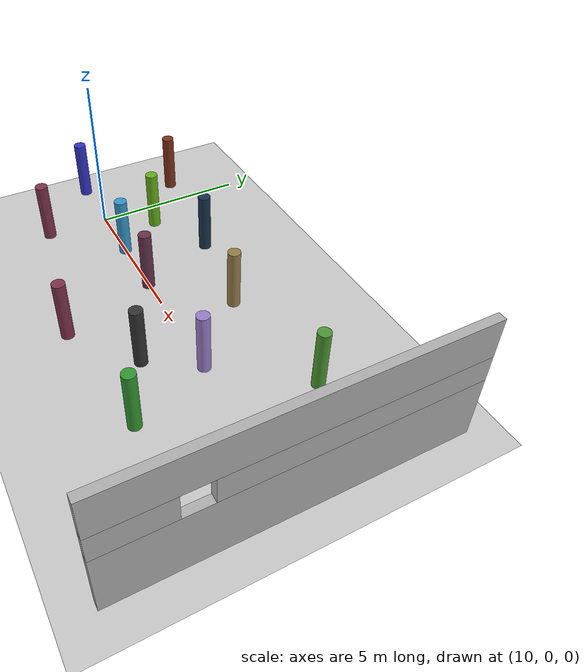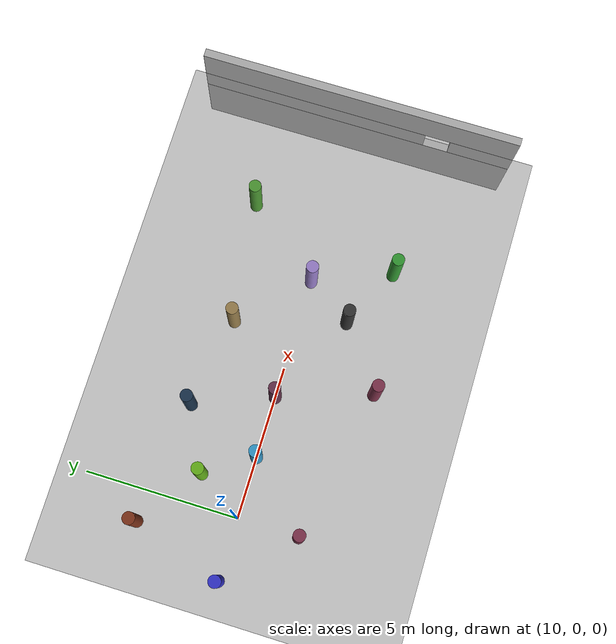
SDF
<sdf version="1.10">
 <world name="tmp">
  <physics type="ode">
   <max_step_size>0.0040000000000000001</max_step_size>
   <real_time_factor>1</real_time_factor>
   <real_time_update_rate>250</real_time_update_rate>
  </physics>
  <gravity>0 0 -9.8000000000000007</gravity>
  <magnetic_field>6.0000000000000002e-06 2.3e-05 -4.1999999999999998e-05</magnetic_field>
  <atmosphere type="adiabatic"/>
  <scene>
   <grid>false</grid>
   <ambient>0.400000006 0.400000006 0.400000006 1</ambient>
   <background>0.699999988 0.699999988 0.699999988 1</background>
   <shadows>true</shadows>
  </scene>
  <spherical_coordinates>
   <surface_model>EARTH_WGS84</surface_model>
   <world_frame_orientation>ENU</world_frame_orientation>
   <latitude_deg>37.412173071650805</latitude_deg>
   <longitude_deg>-121.998878727967</longitude_deg>
   <elevation>38</elevation>
   <heading_deg>0</heading_deg>
  </spherical_coordinates>
  <model name="ground_plane">
   <static>true</static>
   <link name="link">
    <collision name="collision">
     <geometry><plane><normal>0 0 1</normal><size>1 1</size></plane></geometry>
    </collision>
    <visual name="visual">
     <geometry><plane><normal>0 0 1</normal><size>100 100</size></plane></geometry>
     <material>
      <ambient>0.800000012 0.800000012 0.800000012 1</ambient>
      <diffuse>0.800000012 0.800000012 0.800000012 1</diffuse>
      <specular>0.800000012 0.800000012 0.800000012 1</specular>
     </material>
    </visual>
    <inertial>
     <mass>1</mass>
     <inertia><ixx>1</ixx><ixy>0</ixy><ixz>0</ixz><iyy>1</iyy><iyz>0</iyz><izz>1</izz></inertia>
    </inertial>
   </link>
  </model>
  <model name="box1">
   <pose>23 0 1 0 0 0</pose>
   <static>true</static>
   <link name="link1">
    <collision name="collision"><geometry><box><size>0.25 10 2</size></box></geometry></collision>
    <visual name="visual">
     <geometry><box><size>0.25 10 2</size></box></geometry>
     <material>
      <ambient>0.300000012 0.300000012 0.300000012 1</ambient>
      <diffuse>0.699999988 0.699999988 0.699999988 1</diffuse>
      <specular>1 1 1 1</specular>
     </material>
    </visual>
    <inertial>
     <mass>1</mass>
     <inertia><ixx>1</ixx><ixy>0</ixy><ixz>0</ixz><iyy>1</iyy><iyz>0</iyz><izz>1</izz></inertia>
    </inertial>
   </link>
  </model>
  <model name="box2">
   <pose>23 -4 2.3999999999999999 0 0 0</pose>
   <static>true</static>
   <link name="link1">
    <collision name="collision">
     <geometry><box><size>0.25 2 0.80000000000000004</size></box></geometry>
    </collision>
    <visual name="visual">
     <geometry><box><size>0.25 2 0.80000000000000004</size></box></geometry>
     <material>
      <ambient>0.300000012 0.300000012 0.300000012 1</ambient>
      <diffuse>0.699999988 0.699999988 0.699999988 1</diffuse>
      <specular>1 1 1 1</specular>
     </material>
    </visual>
    <inertial>
     <mass>1</mass>
     <inertia><ixx>1</ixx><ixy>0</ixy><ixz>0</ixz><iyy>1</iyy><iyz>0</iyz><izz>1</izz></inertia>
    </inertial>
   </link>
  </model>
  <model name="box3">
   <pose>23 1.3999999999999999 2.3999999999999999 0 0 0</pose>
   <static>true</static>
   <link name="link1">
    <collision name="collision">
     <geometry><box><size>0.25 7.2000000000000002 0.80000000000000004</size></box></geometry>
    </collision>
    <visual name="visual">
     <geometry><box><size>0.25 7.2000000000000002 0.80000000000000004</size></box></geometry>
     <material>
      <ambient>0.300000012 0.300000012 0.300000012 1</ambient>
      <diffuse>0.699999988 0.699999988 0.699999988 1</diffuse>
      <specular>1 1 1 1</specular>
     </material>
    </visual>
    <inertial>
     <mass>1</mass>
     <inertia><ixx>1</ixx><ixy>0</ixy><ixz>0</ixz><iyy>1</iyy><iyz>0</iyz><izz>1</izz></inertia>
    </inertial>
   </link>
  </model>
  <model name="box4">
   <pose>23 0 3.3999999999999999 0 0 0</pose>
   <static>true</static>
   <link name="link1">
    <collision name="collision"><geometry><box><size>0.25 10 1.2</size></box></geometry></collision>
    <visual name="visual">
     <geometry><box><size>0.25 10 1.2</size></box></geometry>
     <material>
      <ambient>0.300000012 0.300000012 0.300000012 1</ambient>
      <diffuse>0.699999988 0.699999988 0.699999988 1</diffuse>
      <specular>1 1 1 1</specular>
     </material>
    </visual>
    <inertial>
     <mass>1</mass>
     <inertia><ixx>1</ixx><ixy>0</ixy><ixz>0</ixz><iyy>1</iyy><iyz>0</iyz><izz>1</izz></inertia>
    </inertial>
   </link>
  </model>
  <model name="cylinder1">
   <pose>8 0 1 0 0 0</pose>
   <static>true</static>
   <link name="link1">
    <collision name="collision">
     <geometry><cylinder><radius>0.20000000000000001</radius><length>2</length></cylinder></geometry>
    </collision>
    <visual name="visual">
     <geometry><cylinder><radius>0.20000000000000001</radius><length>2</length></cylinder></geometry>
     <material>
      <ambient>0.200000003 0.200000003 0.800000012 1</ambient>
      <diffuse>0.200000003 0.200000003 0.800000012 1</diffuse>
      <specular>0.5 0.5 0.5 1</specular>
     </material>
    </visual>
    <inertial>
     <mass>1</mass>
     <inertia><ixx>1</ixx><ixy>0</ixy><ixz>0</ixz><iyy>1</iyy><iyz>0</iyz><izz>1</izz></inertia>
    </inertial>
   </link>
  </model>
  <model name="cylinder2">
   <pose>9 3 1 0 0 0</pose>
   <static>true</static>
   <link name="link1">
    <collision name="collision">
     <geometry><cylinder><radius>0.20000000000000001</radius><length>2</length></cylinder></geometry>
    </collision>
    <visual name="visual">
     <geometry><cylinder><radius>0.20000000000000001</radius><length>2</length></cylinder></geometry>
     <material>
      <ambient>0.5 0.200000003 0.100000001 1</ambient>
      <diffuse>0.5 0.200000003 0.100000001 1</diffuse>
      <specular>0.5 0.5 0.5 1</specular>
     </material>
    </visual>
    <inertial>
     <mass>1</mass>
     <inertia><ixx>1</ixx><ixy>0</ixy><ixz>0</ixz><iyy>1</iyy><iyz>0</iyz><izz>1</izz></inertia>
    </inertial>
   </link>
  </model>
  <model name="cylinder3">
   <pose>10 -2 1 0 0 0</pose>
   <static>true</static>
   <link name="link1">
    <collision name="collision">
     <geometry><cylinder><radius>0.20000000000000001</radius><length>2</length></cylinder></geometry>
    </collision>
    <visual name="visual">
     <geometry><cylinder><radius>0.20000000000000001</radius><length>2</length></cylinder></geometry>
     <material>
      <ambient>0.5 0.200000003 0.300000012 1</ambient>
      <diffuse>0.5 0.200000003 0.300000012 1</diffuse>
      <specular>0.5 0.5 0.5 1</specular>
     </material>
    </visual>
    <inertial>
     <mass>1</mass>
     <inertia><ixx>1</ixx><ixy>0</ixy><ixz>0</ixz><iyy>1</iyy><iyz>0</iyz><izz>1</izz></inertia>
    </inertial>
   </link>
  </model>
  <model name="cylinder4">
   <pose>11 1.5 1 0 0 0</pose>
   <static>true</static>
   <link name="link1">
    <collision name="collision">
     <geometry><cylinder><radius>0.20000000000000001</radius><length>2</length></cylinder></geometry>
    </collision>
    <visual name="visual">
     <geometry><cylinder><radius>0.20000000000000001</radius><length>2</length></cylinder></geometry>
     <material>
      <ambient>0.400000006 0.699999988 0.100000001 1</ambient>
      <diffuse>0.400000006 0.699999988 0.100000001 1</diffuse>
      <specular>0.5 0.5 0.5 1</specular>
     </material>
    </visual>
    <inertial>
     <mass>1</mass>
     <inertia><ixx>1</ixx><ixy>0</ixy><ixz>0</ixz><iyy>1</iyy><iyz>0</iyz><izz>1</izz></inertia>
    </inertial>
   </link>
  </model>
  <model name="cylinder5">
   <pose>12 0 1 0 0 0</pose>
   <static>true</static>
   <link name="link1">
    <collision name="collision">
     <geometry><cylinder><radius>0.20000000000000001</radius><length>2</length></cylinder></geometry>
    </collision>
    <visual name="visual">
     <geometry><cylinder><radius>0.20000000000000001</radius><length>2</length></cylinder></geometry>
     <material>
      <ambient>0.200000003 0.600000024 0.800000012 1</ambient>
      <diffuse>0.200000003 0.600000024 0.800000012 1</diffuse>
      <specular>0.5 0.5 0.5 1</specular>
     </material>
    </visual>
    <inertial>
     <mass>1</mass>
     <inertia><ixx>1</ixx><ixy>0</ixy><ixz>0</ixz><iyy>1</iyy><iyz>0</iyz><izz>1</izz></inertia>
    </inertial>
   </link>
  </model>
  <model name="cylinder6">
   <pose>13 2.5 1 0 0 0</pose>
   <static>true</static>
   <link name="link1">
    <collision name="collision">
     <geometry><cylinder><radius>0.20000000000000001</radius><length>2</length></cylinder></geometry>
    </collision>
    <visual name="visual">
     <geometry><cylinder><radius>0.20000000000000001</radius><length>2</length></cylinder></geometry>
     <material>
      <ambient>0.100000001 0.200000003 0.300000012 1</ambient>
      <diffuse>0.100000001 0.200000003 0.300000012 1</diffuse>
      <specular>0.5 0.5 0.5 1</specular>
     </material>
    </visual>
    <inertial>
     <mass>1</mass>
     <inertia><ixx>1</ixx><ixy>0</ixy><ixz>0</ixz><iyy>1</iyy><iyz>0</iyz><izz>1</izz></inertia>
    </inertial>
   </link>
  </model>
  <model name="cylinder7">
   <pose>13 2.5 1 0 0 0</pose>
   <static>true</static>
   <link name="link1">
    <collision name="collision">
     <geometry><cylinder><radius>0.20000000000000001</radius><length>2</length></cylinder></geometry>
    </collision>
    <visual name="visual">
     <geometry><cylinder><radius>0.20000000000000001</radius><length>2</length></cylinder></geometry>
     <material>
      <ambient>0.600000024 0.200000003 0.800000012 1</ambient>
      <diffuse>0.600000024 0.200000003 0.800000012 1</diffuse>
      <specular>0.5 0.5 0.5 1</specular>
     </material>
    </visual>
    <inertial>
     <mass>1</mass>
     <inertia><ixx>1</ixx><ixy>0</ixy><ixz>0</ixz><iyy>1</iyy><iyz>0</iyz><izz>1</izz></inertia>
    </inertial>
   </link>
  </model>
  <model name="cylinder8">
   <pose>14 0 1 0 0 0</pose>
   <static>true</static>
   <link name="link1">
    <collision name="collision">
     <geometry><cylinder><radius>0.20000000000000001</radius><length>2</length></cylinder></geometry>
    </collision>
    <visual name="visual">
     <geometry><cylinder><radius>0.20000000000000001</radius><length>2</length></cylinder></geometry>
     <material>
      <ambient>0.400000006 0.200000003 0.300000012 1</ambient>
      <diffuse>0.400000006 0.200000003 0.300000012 1</diffuse>
      <specular>0.5 0.5 0.5 1</specular>
     </material>
    </visual>
    <inertial>
     <mass>1</mass>
     <inertia><ixx>1</ixx><ixy>0</ixy><ixz>0</ixz><iyy>1</iyy><iyz>0</iyz><izz>1</izz></inertia>
    </inertial>
   </link>
  </model>
  <model name="cylinder9">
   <pose>15 -3 1 0 0 0</pose>
   <static>true</static>
   <link name="link1">
    <collision name="collision">
     <geometry><cylinder><radius>0.20000000000000001</radius><length>2</length></cylinder></geometry>
    </collision>
    <visual name="visual">
     <geometry><cylinder><radius>0.20000000000000001</radius><length>2</length></cylinder></geometry>
     <material>
      <ambient>0.5 0.200000003 0.300000012 1</ambient>
      <diffuse>0.5 0.200000003 0.300000012 1</diffuse>
      <specular>0.5 0.5 0.5 1</specular>
     </material>
    </visual>
    <inertial>
     <mass>1</mass>
     <inertia><ixx>1</ixx><ixy>0</ixy><ixz>0</ixz><iyy>1</iyy><iyz>0</iyz><izz>1</izz></inertia>
    </inertial>
   </link>
  </model>
  <model name="cylinder10">
   <pose>16 2 1 0 0 0</pose>
   <static>true</static>
   <link name="link1">
    <collision name="collision">
     <geometry><cylinder><radius>0.20000000000000001</radius><length>2</length></cylinder></geometry>
    </collision>
    <visual name="visual">
     <geometry><cylinder><radius>0.20000000000000001</radius><length>2</length></cylinder></geometry>
     <material>
      <ambient>0.600000024 0.5 0.300000012 1</ambient>
      <diffuse>0.600000024 0.5 0.300000012 1</diffuse>
      <specular>0.5 0.5 0.5 1</specular>
     </material>
    </visual>
    <inertial>
     <mass>1</mass>
     <inertia><ixx>1</ixx><ixy>0</ixy><ixz>0</ixz><iyy>1</iyy><iyz>0</iyz><izz>1</izz></inertia>
    </inertial>
   </link>
  </model>
  <model name="cylinder11">
   <pose>17 -1.5 1 0 0 0</pose>
   <static>true</static>
   <link name="link1">
    <collision name="collision">
     <geometry><cylinder><radius>0.20000000000000001</radius><length>2</length></cylinder></geometry>
    </collision>
    <visual name="visual">
     <geometry><cylinder><radius>0.20000000000000001</radius><length>2</length></cylinder></geometry>
     <material>
      <ambient>0.200000003 0.200000003 0.200000003 1</ambient>
      <diffuse>0.200000003 0.200000003 0.200000003 1</diffuse>
      <specular>0.5 0.5 0.5 1</specular>
     </material>
    </visual>
    <inertial>
     <mass>1</mass>
     <inertia><ixx>1</ixx><ixy>0</ixy><ixz>0</ixz><iyy>1</iyy><iyz>0</iyz><izz>1</izz></inertia>
    </inertial>
   </link>
  </model>
  <model name="cylinder12">
   <pose>18 0 1 0 0 0</pose>
   <static>true</static>
   <link name="link1">
    <collision name="collision">
     <geometry><cylinder><radius>0.20000000000000001</radius><length>2</length></cylinder></geometry>
    </collision>
    <visual name="visual">
     <geometry><cylinder><radius>0.20000000000000001</radius><length>2</length></cylinder></geometry>
     <material>
      <ambient>0.600000024 0.5 0.800000012 1</ambient>
      <diffuse>0.600000024 0.5 0.800000012 1</diffuse>
      <specular>0.5 0.5 0.5 1</specular>
     </material>
    </visual>
    <inertial>
     <mass>1</mass>
     <inertia><ixx>1</ixx><ixy>0</ixy><ixz>0</ixz><iyy>1</iyy><iyz>0</iyz><izz>1</izz></inertia>
    </inertial>
   </link>
  </model>
  <model name="cylinder13">
   <pose>19 -2.5 1 0 0 0</pose>
   <static>true</static>
   <link name="link1">
    <collision name="collision">
     <geometry><cylinder><radius>0.20000000000000001</radius><length>2</length></cylinder></geometry>
    </collision>
    <visual name="visual">
     <geometry><cylinder><radius>0.20000000000000001</radius><length>2</length></cylinder></geometry>
     <material>
      <ambient>0.200000003 0.600000024 0.200000003 1</ambient>
      <diffuse>0.200000003 0.600000024 0.200000003 1</diffuse>
      <specular>0.5 0.5 0.5 1</specular>
     </material>
    </visual>
    <inertial>
     <mass>1</mass>
     <inertia><ixx>1</ixx><ixy>0</ixy><ixz>0</ixz><iyy>1</iyy><iyz>0</iyz><izz>1</izz></inertia>
    </inertial>
   </link>
  </model>
  <model name="cylinder14">
   <pose>20 2.5 1 0 0 0</pose>
   <static>true</static>
   <link name="link1">
    <collision name="collision">
     <geometry><cylinder><radius>0.20000000000000001</radius><length>2</length></cylinder></geometry>
    </collision>
    <visual name="visual">
     <geometry><cylinder><radius>0.20000000000000001</radius><length>2</length></cylinder></geometry>
     <material>
      <ambient>0.300000012 0.600000024 0.200000003 1</ambient>
      <diffuse>0.300000012 0.600000024 0.200000003 1</diffuse>
      <specular>0.5 0.5 0.5 1</specular>
     </material>
    </visual>
    <inertial>
     <mass>1</mass>
     <inertia><ixx>1</ixx><ixy>0</ixy><ixz>0</ixz><iyy>1</iyy><iyz>0</iyz><izz>1</izz></inertia>
    </inertial>
   </link>
  </model>
  <light name="sunUTC" type="directional">
   <pose>0 0 500 0 0 0</pose>
   <intensity>1</intensity>
   <direction>0.001 0.625 -0.78000000000000003</direction>
   <diffuse>0.903999984 0.903999984 0.903999984 1</diffuse>
   <specular>0.270999998 0.270999998 0.270999998 1</specular>
   <attenuation><range>2000</range><linear>0</linear><constant>1</constant><quadratic>0</quadratic></attenuation>
   <spot><inner_angle>0</inner_angle><outer_angle>0</outer_angle><falloff>0</falloff></spot>
  </light>
 </world>
</sdf>
